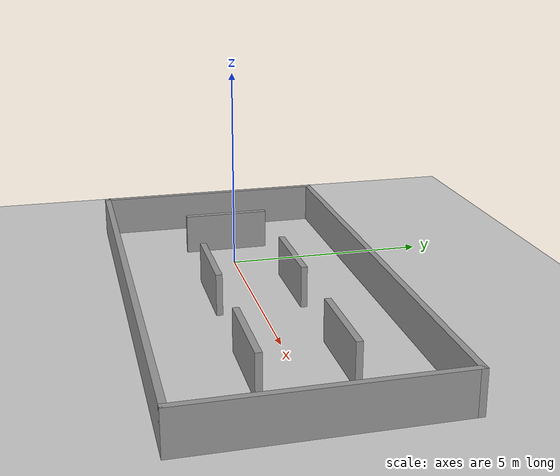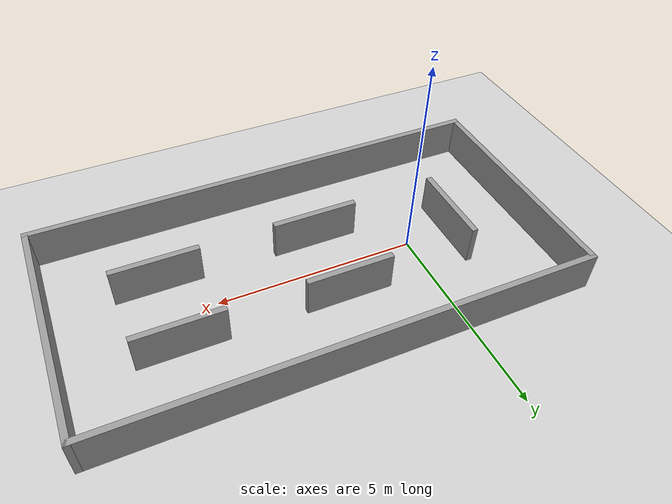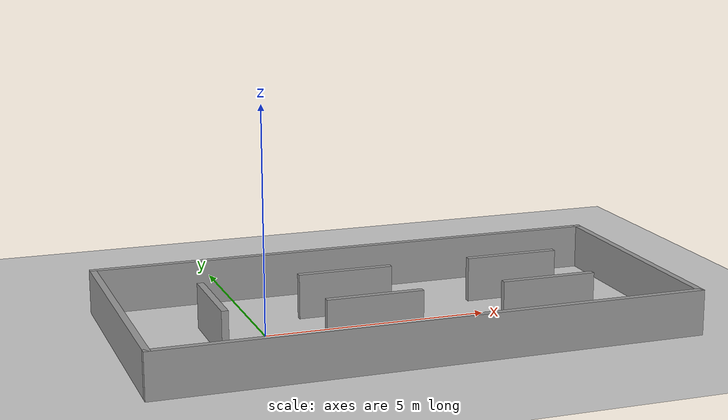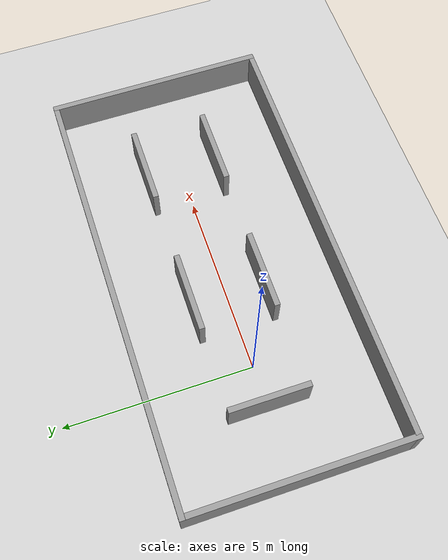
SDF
<sdf version="1.7">
 <world name="default">
  <light name="sun" type="directional">
   <cast_shadows>0</cast_shadows>
   <pose>0 0 10 0 -0 0</pose>
   <diffuse>0.8 0.8 0.8 1</diffuse>
   <specular>0.2 0.2 0.2 1</specular>
   <attenuation>
    <range>1000</range>
    <constant>0.9</constant>
    <linear>0.01</linear>
    <quadratic>0.001</quadratic>
   </attenuation>
   <direction>-0.5 0.1 -0.9</direction>
   <spot><inner_angle>0</inner_angle><outer_angle>0</outer_angle><falloff>0</falloff></spot>
  </light>
  <model name="ground_plane">
   <static>1</static>
   <link name="link">
    <collision name="collision">
     <geometry><plane><normal>0 0 1</normal><size>100 100</size></plane></geometry>
     <surface>
      <contact><collide_bitmask>65535</collide_bitmask></contact>
      <friction><ode><mu>100</mu><mu2>50</mu2></ode></friction>
     </surface>
    </collision>
    <visual name="visual">
     <cast_shadows>0</cast_shadows>
     <geometry><plane><normal>0 0 1</normal><size>100 100</size></plane></geometry>
     <material>
      <script><uri>file://media/materials/scripts/gazebo.material</uri><name>Gazebo/Grey</name></script>
     </material>
    </visual>
   </link>
  </model>
  <gravity>0 0 -9.8</gravity>
  <magnetic_field>6e-06 2.3e-05 -4.2e-05</magnetic_field>
  <atmosphere type="adiabatic"/>
  <physics type="ode">
   <max_step_size>0.001</max_step_size>
   <real_time_factor>1</real_time_factor>
   <real_time_update_rate>1000</real_time_update_rate>
  </physics>
  <scene><ambient>0.4 0.4 0.4 1</ambient><background>0.7 0.7 0.7 1</background><shadows>0</shadows></scene>
  <spherical_coordinates>
   <surface_model>EARTH_WGS84</surface_model>
   <latitude_deg>0</latitude_deg>
   <longitude_deg>0</longitude_deg>
   <elevation>0</elevation>
   <heading_deg>0</heading_deg>
  </spherical_coordinates>
  <model name="husky_world">
   <pose>2.7977 -0.068121 0 0 -0 0</pose>
   <link name="Wall_10">
    <collision name="Wall_10_Collision">
     <geometry><box><size>6 0.15 1</size></box></geometry>
     <pose>0 0 0.5 0 -0 0</pose>
    </collision>
    <visual name="Wall_10_Visual">
     <pose>0 0 0.5 0 -0 0</pose>
     <geometry><box><size>6 0.15 1</size></box></geometry>
     <material>
      <script><uri>file://media/materials/scripts/gazebo.material</uri><name>Gazebo/Grey</name></script>
      <ambient>1 1 1 1</ambient>
     </material>
     <meta><layer>0</layer></meta>
    </visual>
    <pose>5.925 0 0 0 -0 1.5708</pose>
   </link>
   <link name="Wall_11">
    <collision name="Wall_11_Collision">
     <geometry><box><size>12 0.15 1</size></box></geometry>
     <pose>0 0 0.5 0 -0 0</pose>
    </collision>
    <visual name="Wall_11_Visual">
     <pose>0 0 0.5 0 -0 0</pose>
     <geometry><box><size>12 0.15 1</size></box></geometry>
     <material>
      <script><uri>file://media/materials/scripts/gazebo.material</uri><name>Gazebo/Grey</name></script>
      <ambient>1 1 1 1</ambient>
     </material>
     <meta><layer>0</layer></meta>
    </visual>
    <pose>-0 2.925 0 0 -0 3.14159</pose>
   </link>
   <link name="Wall_13">
    <collision name="Wall_13_Collision">
     <geometry><box><size>2.15 0.15 1</size></box></geometry>
     <pose>0 0 0.5 0 -0 0</pose>
    </collision>
    <visual name="Wall_13_Visual">
     <pose>0 0 0.5 0 -0 0</pose>
     <geometry><box><size>2.15 0.15 1</size></box></geometry>
     <material>
      <script><uri>file://media/materials/scripts/gazebo.material</uri><name>Gazebo/Grey</name></script>
      <ambient>1 1 1 1</ambient>
     </material>
     <meta><layer>0</layer></meta>
    </visual>
    <pose>-3.925 0.075 0 0 -0 -1.5708</pose>
   </link>
   <link name="Wall_15">
    <collision name="Wall_15_Collision">
     <geometry><box><size>2.15 0.15 1</size></box></geometry>
     <pose>0 0 0.5 0 -0 0</pose>
    </collision>
    <visual name="Wall_15_Visual">
     <pose>0 0 0.5 0 -0 0</pose>
     <geometry><box><size>2.15 0.15 1</size></box></geometry>
     <material>
      <script><uri>file://media/materials/scripts/gazebo.material</uri><name>Gazebo/Grey</name></script>
      <ambient>1 1 1 1</ambient>
     </material>
     <meta><layer>0</layer></meta>
    </visual>
    <pose>-0.675 -0.925 0 0 -0 0</pose>
   </link>
   <link name="Wall_17">
    <collision name="Wall_17_Collision">
     <geometry><box><size>2.15 0.15 1</size></box></geometry>
     <pose>0 0 0.5 0 -0 0</pose>
    </collision>
    <visual name="Wall_17_Visual">
     <pose>0 0 0.5 0 -0 0</pose>
     <geometry><box><size>2.15 0.15 1</size></box></geometry>
     <material>
      <script><uri>file://media/materials/scripts/gazebo.material</uri><name>Gazebo/Grey</name></script>
      <ambient>1 1 1 1</ambient>
     </material>
     <meta><layer>0</layer></meta>
    </visual>
    <pose>-0.675 1.075 0 0 -0 0</pose>
   </link>
   <link name="Wall_19">
    <collision name="Wall_19_Collision">
     <geometry><box><size>2.15 0.15 1</size></box></geometry>
     <pose>0 0 0.5 0 -0 0</pose>
    </collision>
    <visual name="Wall_19_Visual">
     <pose>0 0 0.5 0 -0 0</pose>
     <geometry><box><size>2.15 0.15 1</size></box></geometry>
     <material>
      <script><uri>file://media/materials/scripts/gazebo.material</uri><name>Gazebo/Grey</name></script>
      <ambient>1 1 1 1</ambient>
     </material>
     <meta><layer>0</layer></meta>
    </visual>
    <pose>3.325 1.075 0 0 -0 0</pose>
   </link>
   <link name="Wall_21">
    <collision name="Wall_21_Collision">
     <geometry><box><size>2.15 0.15 1</size></box></geometry>
     <pose>0 0 0.5 0 -0 0</pose>
    </collision>
    <visual name="Wall_21_Visual">
     <pose>0 0 0.5 0 -0 0</pose>
     <geometry><box><size>2.15 0.15 1</size></box></geometry>
     <material>
      <script><uri>file://media/materials/scripts/gazebo.material</uri><name>Gazebo/Grey</name></script>
      <ambient>1 1 1 1</ambient>
     </material>
     <meta><layer>0</layer></meta>
    </visual>
    <pose>3.325 -0.925 0 0 -0 0</pose>
   </link>
   <link name="Wall_6">
    <collision name="Wall_6_Collision">
     <geometry><box><size>6 0.15 1</size></box></geometry>
     <pose>0 0 0.5 0 -0 0</pose>
    </collision>
    <visual name="Wall_6_Visual">
     <pose>0 0 0.5 0 -0 0</pose>
     <geometry><box><size>6 0.15 1</size></box></geometry>
     <material>
      <script><uri>file://media/materials/scripts/gazebo.material</uri><name>Gazebo/Grey</name></script>
      <ambient>1 1 1 1</ambient>
     </material>
     <meta><layer>0</layer></meta>
    </visual>
    <pose>-5.925 0 0 0 -0 1.5708</pose>
   </link>
   <link name="Wall_8">
    <collision name="Wall_8_Collision">
     <geometry><box><size>12 0.15 1</size></box></geometry>
     <pose>0 0 0.5 0 -0 0</pose>
    </collision>
    <visual name="Wall_8_Visual">
     <pose>0 0 0.5 0 -0 0</pose>
     <geometry><box><size>12 0.15 1</size></box></geometry>
     <material>
      <script><uri>file://media/materials/scripts/gazebo.material</uri><name>Gazebo/Grey</name></script>
      <ambient>1 1 1 1</ambient>
     </material>
     <meta><layer>0</layer></meta>
    </visual>
    <pose>-0 -2.925 0 0 -0 0</pose>
   </link>
   <static>1</static>
  </model>
 </world>
</sdf>
